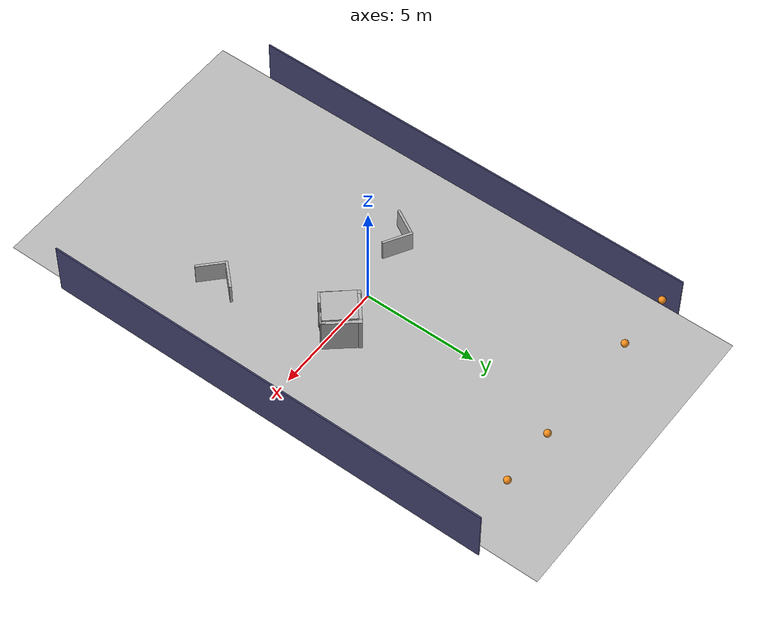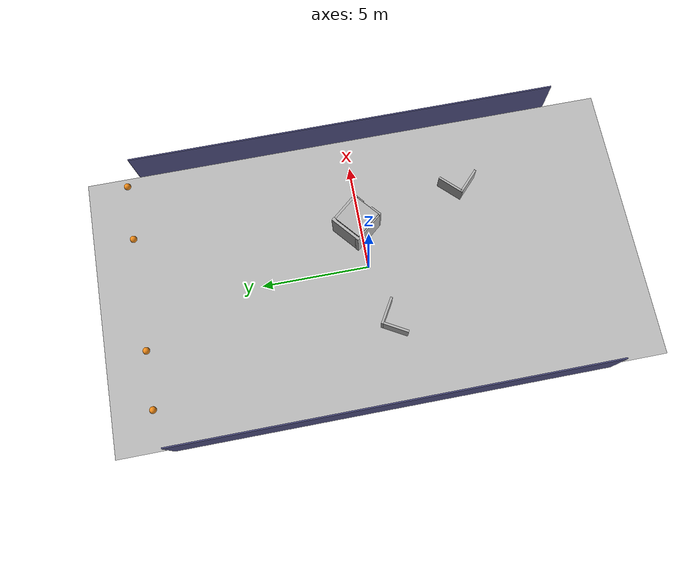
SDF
<sdf version="1.5">
 <world name="default">
  <include><uri>model://sun</uri></include>
  <include><uri>model://basketball_floor</uri></include>
  <include>
   <uri>model://danger_sphere_obstacle</uri>
   <name>obstacle_1</name>
   <pose>5.0 10.0 2.5 0 0 0</pose>
  </include>
  <include>
   <uri>model://danger_sphere_obstacle</uri>
   <name>obstacle_2</name>
   <pose>2.5 10.0 2.5 0 0 0</pose>
  </include>
  <include>
   <uri>model://danger_sphere_obstacle</uri>
   <name>obstacle_3</name>
   <pose>-2.5 10.0 2.5 0 0 0</pose>
  </include>
  <include>
   <uri>model://danger_sphere_obstacle</uri>
   <name>obstacle_4</name>
   <pose>-5.0 10.0 2.5 0 0 0</pose>
  </include>
  <include><uri>model://arena_wall</uri><name>wall_1</name><pose>6.55 0.0 0.7 0 0 1.57</pose></include>
  <include><uri>model://arena_wall</uri><name>wall_2</name><pose>-6.55 0.0 0.7 0 0 1.57</pose></include>
  <include><uri>model://Wall90Degree</uri><name>wall90_1</name><pose>-2.77 -0.48 0.46 0 0 -2.1</pose></include>
  <include><uri>model://Wall90Degree</uri><name>wall90_2</name><pose>2.98 -4.9 0.46 0 0 -0.77</pose></include>
  <include><uri>model://shelter</uri><name>shelter_1</name><pose>2.12 0.04 0.97 0 0 -0.87</pose></include>
  <scene><sky><clouds><speed>12</speed></clouds></sky></scene>
  <physics name="default_physics" default="0" type="ode">
   <gravity>0 0 -9.8066</gravity>
   <ode>
    <solver>
     <type>quick</type>
     <iters>10</iters>
     <sor>1.3</sor>
     <use_dynamic_moi_rescaling>0</use_dynamic_moi_rescaling>
    </solver>
    <constraints>
     <cfm>0</cfm>
     <erp>0.2</erp>
     <contact_max_correcting_vel>100</contact_max_correcting_vel>
     <contact_surface_layer>0.001</contact_surface_layer>
    </constraints>
   </ode>
   <max_step_size>0.002</max_step_size>
   <real_time_factor>1</real_time_factor>
   <real_time_update_rate>500</real_time_update_rate>
   <magnetic_field>6.0e-6 2.3e-5 -4.2e-5</magnetic_field>
  </physics>
 </world>
</sdf>

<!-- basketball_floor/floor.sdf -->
<sdf version="1.6">
    <model name='floor'>
      <pose frame=''>0 0 0 0 -0 0</pose>
      <static>true</static>
      <link name='link'>
        <collision name='collision'>
          <pose frame=''>0 0 -0.05 0 -0 0</pose>
          <geometry>
            <box>
              <size>20 40 0.1</size>
            </box>
          </geometry>
          <max_contacts>10</max_contacts>
          <surface>
            <contact>
              <ode/>
            </contact>
            <bounce/>
            <friction>
              <torsional>
                <ode/>
              </torsional>
              <ode/>
            </friction>
          </surface>
        </collision>
        <visual name='visual'>
            <geometry>
              <mesh>
                <scale>1 1 1</scale>
                <uri>model://basketball_floor/meshes/floor.dae</uri>
              </mesh>
            </geometry>
        </visual>
        <self_collide>0</self_collide>
        <kinematic>0</kinematic>
      </link>
    </model>
</sdf>

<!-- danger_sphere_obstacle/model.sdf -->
<sdf version="1.6">
  <model name="danger_sphere_obstacle">
    <link name="base">
      <collision name="collision">
        <geometry>
          <box>
            <size>0.3 0.3 0.3</size>
          </box>
        </geometry>
      </collision>
      <visual name="visual">
        <cast_shadows>true</cast_shadows>
        <material>
            <script>
                <uri>file://media/materials/scripts/gazebo.material</uri>
                <name>Gazebo/Orange</name>
            </script>
        </material>
        <geometry>
          <sphere>
            <radius>0.15</radius>
          </sphere>
        </geometry>
      </visual>
    </link>
    <plugin name="enemy_drone" filename="libenemy_drone.so">
      <x_min>-7.5</x_min>
      <x_max>7.5</x_max>
      <y_min>-11.5</y_min>
      <y_max>11.5</y_max>
    </plugin>
  </model>
</sdf>

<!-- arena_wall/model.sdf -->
<sdf version='1.6'>
  <model name='arena_wall'>
    <link name='link_0'>
      <pose frame=''>0 3e-06 0 0 -0 0</pose>
      <inertial>
        <mass>1.00347</mass>
        <inertia>
          <ixx>0.0839124</ixx>
          <ixy>0</ixy>
          <ixz>0</ixz>
          <iyy>24.373</iyy>
          <iyz>0</iyz>
          <izz>24.2897</izz>
        </inertia>
        <pose frame=''>0 0 0 0 -0 0</pose>
      </inertial>
      <visual name='visual'>
        <pose frame=''>0 0 0 0 -0 0</pose>
        <geometry>
          <box>
            <size>20 0.058872 2.5</size>
          </box>
        </geometry>
        <material>
          <lighting>1</lighting>
          <script>
              <uri>model://arena_wall/materials/scripts/repeated.material</uri>
              <name>WallRepeatedTexture</name>
          </script>
          <ambient>0.3 0.3 0.5 1</ambient>
          <diffuse>0.3 0.3 0.5 1</diffuse>
          <specular>0.01 0.01 0.01 1</specular>
          <emissive>0 0 0 1</emissive>
        </material>
        <cast_shadows>1</cast_shadows>
        <transparency>0</transparency>
      </visual>
      <collision name='collision'>
        <laser_retro>0</laser_retro>
        <max_contacts>10</max_contacts>
        <pose frame=''>0 0 0 0 -0 0</pose>
        <geometry>
          <box>
            <size>20 0.058872 2.5</size>
          </box>
        </geometry>
        <surface>
          <friction>
            <ode>
              <mu>1</mu>
              <mu2>1</mu2>
              <fdir1>0 0 0</fdir1>
              <slip1>0</slip1>
              <slip2>0</slip2>
            </ode>
            <torsional>
              <coefficient>1</coefficient>
              <patch_radius>0</patch_radius>
              <surface_radius>0</surface_radius>
              <use_patch_radius>1</use_patch_radius>
              <ode>
                <slip>0</slip>
              </ode>
            </torsional>
          </friction>
          <bounce>
            <restitution_coefficient>0</restitution_coefficient>
            <threshold>1e+06</threshold>
          </bounce>
          <contact>
            <collide_without_contact>0</collide_without_contact>
            <collide_without_contact_bitmask>1</collide_without_contact_bitmask>
            <collide_bitmask>1</collide_bitmask>
            <ode>
              <soft_cfm>0</soft_cfm>
              <soft_erp>0.2</soft_erp>
              <kp>1e+13</kp>
              <kd>1</kd>
              <max_vel>0.01</max_vel>
              <min_depth>0</min_depth>
            </ode>
            <bullet>
              <split_impulse>1</split_impulse>
              <split_impulse_penetration_threshold>-0.01</split_impulse_penetration_threshold>
              <soft_cfm>0</soft_cfm>
              <soft_erp>0.2</soft_erp>
              <kp>1e+13</kp>
              <kd>1</kd>
            </bullet>
          </contact>
        </surface>
      </collision>
    </link>
    <static>1</static>
    <allow_auto_disable>1</allow_auto_disable>
  </model>
</sdf>

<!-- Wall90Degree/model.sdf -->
<sdf version='1.6'>
  <model name='Wall90Degree'>
      <static>1</static>
    <link name='link_1'>
      <pose frame=''>-0.300585 0.29062 0 0 -0 0</pose>
      <inertial>
        <mass>0.132366</mass>
        <inertia>
          <ixx>0.0292074</ixx>
          <ixy>0</ixy>
          <ixz>0</ixz>
          <iyy>0.0111478</iyy>
          <iyz>0</iyz>
          <izz>0.0182942</izz>
        </inertia>
        <pose frame=''>0 0 0 0 -0 0</pose>
      </inertial>
      <visual name='visual'>
        <pose frame=''>0 0 0 0 -0 0</pose>
        <geometry>
          <box>
            <size>0.103113 1.2837 1</size>
          </box>
        </geometry>
        <material>
          <lighting>1</lighting>
          <script>
            <uri>model://Wall90Degree/materials/scripts/repeated.material</uri>
            <name>RepeatedTexture</name>
          </script>
          <ambient>0.3 0.3 0.3 1</ambient>
          <diffuse>0.7 0.7 0.7 1</diffuse>
          <specular>0.01 0.01 0.01 1</specular>
          <emissive>0 0 0 1</emissive>
        </material>
        <cast_shadows>1</cast_shadows>
        <transparency>0</transparency>
      </visual>
      <collision name='collision'>
        <laser_retro>0</laser_retro>
        <max_contacts>10</max_contacts>
        <pose frame=''>0 0 0 0 -0 0</pose>
        <geometry>
          <box>
            <size>0.103113 1.2837 1</size>
          </box>
        </geometry>
        <surface>
          <friction>
            <ode>
              <mu>1</mu>
              <mu2>1</mu2>
              <fdir1>0 0 0</fdir1>
              <slip1>0</slip1>
              <slip2>0</slip2>
            </ode>
            <torsional>
              <coefficient>1</coefficient>
              <patch_radius>0</patch_radius>
              <surface_radius>0</surface_radius>
              <use_patch_radius>1</use_patch_radius>
              <ode>
                <slip>0</slip>
              </ode>
            </torsional>
          </friction>
          <bounce>
            <restitution_coefficient>0</restitution_coefficient>
            <threshold>1e+06</threshold>
          </bounce>
          <contact>
            <collide_without_contact>0</collide_without_contact>
            <collide_without_contact_bitmask>1</collide_without_contact_bitmask>
            <collide_bitmask>1</collide_bitmask>
            <ode>
              <soft_cfm>0</soft_cfm>
              <soft_erp>0.2</soft_erp>
              <kp>1e+13</kp>
              <kd>1</kd>
              <max_vel>0.01</max_vel>
              <min_depth>0</min_depth>
            </ode>
            <bullet>
              <split_impulse>1</split_impulse>
              <split_impulse_penetration_threshold>-0.01</split_impulse_penetration_threshold>
              <soft_cfm>0</soft_cfm>
              <soft_erp>0.2</soft_erp>
              <kp>1e+13</kp>
              <kd>1</kd>
            </bullet>
          </contact>
        </surface>
      </collision>
    </link>
    <link name='link_1_clone'>
      <pose frame=''>0.300589 -0.290617 0 0 0 -1.5588</pose>
      <inertial>
        <mass>0.132366</mass>
        <inertia>
          <ixx>0.0292074</ixx>
          <ixy>0</ixy>
          <ixz>0</ixz>
          <iyy>0.0111478</iyy>
          <iyz>0</iyz>
          <izz>0.0182942</izz>
        </inertia>
        <pose frame=''>0 0 0 0 -0 0</pose>
      </inertial>
      <visual name='visual'>
        <pose frame=''>0 0 0 0 -0 0</pose>
        <geometry>
          <box>
            <size>0.103113 1.2837 1</size>
          </box>
        </geometry>
        <material>
          <lighting>1</lighting>
          <script>
              <uri>model://Wall90Degree/materials/scripts/repeated.material</uri>
            <name>RepeatedTexture</name>
          </script>
          <ambient>0.3 0.3 0.3 1</ambient>
          <diffuse>0.7 0.7 0.7 1</diffuse>
          <specular>0.01 0.01 0.01 1</specular>
          <emissive>0 0 0 1</emissive>
          <shader type='pixel'/>
        </material>
        <cast_shadows>1</cast_shadows>
        <transparency>0</transparency>
      </visual>
      <collision name='collision'>
        <laser_retro>0</laser_retro>
        <max_contacts>10</max_contacts>
        <pose frame=''>0 0 0 0 -0 0</pose>
        <geometry>
          <box>
            <size>0.103113 1.2837 1</size>
          </box>
        </geometry>
        <surface>
          <friction>
            <ode>
              <mu>1</mu>
              <mu2>1</mu2>
              <fdir1>0 0 0</fdir1>
              <slip1>0</slip1>
              <slip2>0</slip2>
            </ode>
            <torsional>
              <coefficient>1</coefficient>
              <patch_radius>0</patch_radius>
              <surface_radius>0</surface_radius>
              <use_patch_radius>1</use_patch_radius>
              <ode>
                <slip>0</slip>
              </ode>
            </torsional>
          </friction>
          <bounce>
            <restitution_coefficient>0</restitution_coefficient>
            <threshold>1e+06</threshold>
          </bounce>
          <contact>
            <collide_without_contact>0</collide_without_contact>
            <collide_without_contact_bitmask>1</collide_without_contact_bitmask>
            <collide_bitmask>1</collide_bitmask>
            <ode>
              <soft_cfm>0</soft_cfm>
              <soft_erp>0.2</soft_erp>
              <kp>1e+13</kp>
              <kd>1</kd>
              <max_vel>0.01</max_vel>
              <min_depth>0</min_depth>
            </ode>
            <bullet>
              <split_impulse>1</split_impulse>
              <split_impulse_penetration_threshold>-0.01</split_impulse_penetration_threshold>
              <soft_cfm>0</soft_cfm>
              <soft_erp>0.2</soft_erp>
              <kp>1e+13</kp>
              <kd>1</kd>
            </bullet>
          </contact>
        </surface>
      </collision>
    </link>
    <static>0</static>
    <allow_auto_disable>1</allow_auto_disable>
  </model>
</sdf>

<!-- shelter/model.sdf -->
<sdf version='1.6'>
  <model name='shelter'>
    <model name='Shelter'>
      <static>1</static>
      <link name='link_0'>
        <pose frame=''>-0.920119 0.015171 -0.190897 0 -0 0</pose>
        <inertial>
          <mass>0.432828</mass>
          <inertia>
            <ixx>0.182499</ixx>
            <ixy>0</ixy>
            <ixz>0</ixz>
            <iyy>0.0956056</iyy>
            <iyz>0</iyz>
            <izz>0.0890079</izz>
          </inertia>
          <pose frame=''>0 0 0 0 -0 0</pose>
        </inertial>
        <visual name='visual'>
          <pose frame=''>0 0 0 0 -0 0</pose>
          <geometry>
            <box>
              <size>0.171105 1.56146 1.61905</size>
            </box>
          </geometry>
          <material>
            <lighting>1</lighting>
            <script>
                <uri>model://shelter/materials/scripts/repeated.material</uri>
              <name>RepeatedTexture</name>
            </script>
            <ambient>0.3 0.3 0.3 1</ambient>
            <diffuse>0.7 0.7 0.7 1</diffuse>
            <specular>0.01 0.01 0.01 1</specular>
            <emissive>0 0 0 1</emissive>
          </material>
          <cast_shadows>1</cast_shadows>
          <transparency>0</transparency>
        </visual>
        <collision name='collision'>
          <laser_retro>0</laser_retro>
          <max_contacts>10</max_contacts>
          <pose frame=''>0 0 0 0 -0 0</pose>
          <geometry>
            <box>
              <size>0.171105 1.56146 1.61905</size>
            </box>
          </geometry>
          <surface>
            <friction>
              <ode>
                <mu>1</mu>
                <mu2>1</mu2>
                <fdir1>0 0 0</fdir1>
                <slip1>0</slip1>
                <slip2>0</slip2>
              </ode>
              <torsional>
                <coefficient>1</coefficient>
                <patch_radius>0</patch_radius>
                <surface_radius>0</surface_radius>
                <use_patch_radius>1</use_patch_radius>
                <ode>
                  <slip>0</slip>
                </ode>
              </torsional>
            </friction>
            <bounce>
              <restitution_coefficient>0</restitution_coefficient>
              <threshold>1e+06</threshold>
            </bounce>
            <contact>
              <collide_without_contact>0</collide_without_contact>
              <collide_without_contact_bitmask>1</collide_without_contact_bitmask>
              <collide_bitmask>1</collide_bitmask>
              <ode>
                <soft_cfm>0</soft_cfm>
                <soft_erp>0.2</soft_erp>
                <kp>1e+13</kp>
                <kd>1</kd>
                <max_vel>0.01</max_vel>
                <min_depth>0</min_depth>
              </ode>
              <bullet>
                <split_impulse>1</split_impulse>
                <split_impulse_penetration_threshold>-0.01</split_impulse_penetration_threshold>
                <soft_cfm>0</soft_cfm>
                <soft_erp>0.2</soft_erp>
                <kp>1e+13</kp>
                <kd>1</kd>
              </bullet>
            </contact>
          </surface>
        </collision>
      </link>
      <link name='link_0_clone'>
        <pose frame=''>-0.21624 0.6946 -0.190897 0 0 -1.57056</pose>
        <inertial>
          <mass>0.432828</mass>
          <inertia>
            <ixx>0.182499</ixx>
            <ixy>0</ixy>
            <ixz>0</ixz>
            <iyy>0.0956056</iyy>
            <iyz>0</iyz>
            <izz>0.0890079</izz>
          </inertia>
          <pose frame=''>0 0 0 0 -0 0</pose>
        </inertial>
        <visual name='visual'>
          <pose frame=''>0 0 0 0 -0 0</pose>
          <geometry>
            <box>
              <size>0.171105 1.56146 1.61905</size>
            </box>
          </geometry>
          <material>
            <lighting>1</lighting>
            <script>
                <uri>model://shelter/materials/scripts/repeated.material</uri>
              <name>RepeatedTexture</name>
            </script>
            <ambient>0.3 0.3 0.3 1</ambient>
            <diffuse>0.7 0.7 0.7 1</diffuse>
            <specular>0.01 0.01 0.01 1</specular>
            <emissive>0 0 0 1</emissive>
            <shader type='pixel'/>
          </material>
          <cast_shadows>1</cast_shadows>
          <transparency>0</transparency>
        </visual>
        <collision name='collision'>
          <laser_retro>0</laser_retro>
          <max_contacts>10</max_contacts>
          <pose frame=''>0 0 0 0 -0 0</pose>
          <geometry>
            <box>
              <size>0.171105 1.56146 1.61905</size>
            </box>
          </geometry>
          <surface>
            <friction>
              <ode>
                <mu>1</mu>
                <mu2>1</mu2>
                <fdir1>0 0 0</fdir1>
                <slip1>0</slip1>
                <slip2>0</slip2>
              </ode>
              <torsional>
                <coefficient>1</coefficient>
                <patch_radius>0</patch_radius>
                <surface_radius>0</surface_radius>
                <use_patch_radius>1</use_patch_radius>
                <ode>
                  <slip>0</slip>
                </ode>
              </torsional>
            </friction>
            <bounce>
              <restitution_coefficient>0</restitution_coefficient>
              <threshold>1e+06</threshold>
            </bounce>
            <contact>
              <collide_without_contact>0</collide_without_contact>
              <collide_without_contact_bitmask>1</collide_without_contact_bitmask>
              <collide_bitmask>1</collide_bitmask>
              <ode>
                <soft_cfm>0</soft_cfm>
                <soft_erp>0.2</soft_erp>
                <kp>1e+13</kp>
                <kd>1</kd>
                <max_vel>0.01</max_vel>
                <min_depth>0</min_depth>
              </ode>
              <bullet>
                <split_impulse>1</split_impulse>
                <split_impulse_penetration_threshold>-0.01</split_impulse_penetration_threshold>
                <soft_cfm>0</soft_cfm>
                <soft_erp>0.2</soft_erp>
                <kp>1e+13</kp>
                <kd>1</kd>
              </bullet>
            </contact>
          </surface>
        </collision>
      </link>
      <link name='link_0_clone_0'>
        <pose frame=''>-0.169587 -0.024586 0.608475 0 -1.53496 0</pose>
        <inertial>
          <mass>0.325147</mass>
          <inertia>
            <ixx>0.103015</ixx>
            <ixy>0</ixy>
            <ixz>0</ixz>
            <iyy>0.0544996</iyy>
            <iyz>0</iyz>
            <izz>0.0501041</izz>
          </inertia>
          <pose frame=''>0 0 0 0 -0 0</pose>
        </inertial>
        <visual name='visual'>
          <pose frame=''>0 0 0 0 -0 0</pose>
          <geometry>
            <box>
              <size>0.171105 1.34895 1.40786</size>
            </box>
          </geometry>
          <material>
            <lighting>1</lighting>
            <script>
                <uri>model://shelter/materials/scripts/repeated.material</uri>
              <name>RepeatedTexture</name>
            </script>
            <ambient>0.3 0.3 0.3 1</ambient>
            <diffuse>0.7 0.7 0.7 1</diffuse>
            <specular>0.01 0.01 0.01 1</specular>
            <emissive>0 0 0 1</emissive>
            <shader type='pixel'/>
          </material>
          <cast_shadows>1</cast_shadows>
          <transparency>0</transparency>
        </visual>
        <collision name='collision'>
          <laser_retro>0</laser_retro>
          <max_contacts>10</max_contacts>
          <pose frame=''>0 0 0 0 -0 0</pose>
          <geometry>
            <box>
              <size>0.171105 1.34895 1.40786</size>
            </box>
          </geometry>
          <surface>
            <friction>
              <ode>
                <mu>1</mu>
                <mu2>1</mu2>
                <fdir1>0 0 0</fdir1>
                <slip1>0</slip1>
                <slip2>0</slip2>
              </ode>
              <torsional>
                <coefficient>1</coefficient>
                <patch_radius>0</patch_radius>
                <surface_radius>0</surface_radius>
                <use_patch_radius>1</use_patch_radius>
                <ode>
                  <slip>0</slip>
                </ode>
              </torsional>
            </friction>
            <bounce>
              <restitution_coefficient>0</restitution_coefficient>
              <threshold>1e+06</threshold>
            </bounce>
            <contact>
              <collide_without_contact>0</collide_without_contact>
              <collide_without_contact_bitmask>1</collide_without_contact_bitmask>
              <collide_bitmask>1</collide_bitmask>
              <ode>
                <soft_cfm>0</soft_cfm>
                <soft_erp>0.2</soft_erp>
                <kp>1e+13</kp>
                <kd>1</kd>
                <max_vel>0.01</max_vel>
                <min_depth>0</min_depth>
              </ode>
              <bullet>
                <split_impulse>1</split_impulse>
                <split_impulse_penetration_threshold>-0.01</split_impulse_penetration_threshold>
                <soft_cfm>0</soft_cfm>
                <soft_erp>0.2</soft_erp>
                <kp>1e+13</kp>
                <kd>1</kd>
              </bullet>
            </contact>
          </surface>
        </collision>
      </link>
      <link name='link_0_clone_clone'>
        <pose frame=''>-0.239297 -0.680115 -0.190897 0 0 -1.57056</pose>
        <inertial>
          <mass>0.432828</mass>
          <inertia>
            <ixx>0.182499</ixx>
            <ixy>0</ixy>
            <ixz>0</ixz>
            <iyy>0.0956056</iyy>
            <iyz>0</iyz>
            <izz>0.0890079</izz>
          </inertia>
          <pose frame=''>0 0 0 0 -0 0</pose>
        </inertial>
        <visual name='visual'>
          <pose frame=''>0 0 0 0 -0 0</pose>
          <geometry>
            <box>
              <size>0.171105 1.56146 1.61905</size>
            </box>
          </geometry>
          <material>
            <lighting>1</lighting>
            <script>
                <uri>model://shelter/materials/scripts/repeated.material</uri>
              <name>RepeatedTexture</name>
            </script>
            <ambient>0.3 0.3 0.3 1</ambient>
            <diffuse>0.7 0.7 0.7 1</diffuse>
            <specular>0.01 0.01 0.01 1</specular>
            <emissive>0 0 0 1</emissive>
            <shader type='pixel'/>
          </material>
          <cast_shadows>1</cast_shadows>
          <transparency>0</transparency>
        </visual>
        <collision name='collision'>
          <laser_retro>0</laser_retro>
          <max_contacts>10</max_contacts>
          <pose frame=''>0 0 0 0 -0 0</pose>
          <geometry>
            <box>
              <size>0.171105 1.56146 1.61905</size>
            </box>
          </geometry>
          <surface>
            <friction>
              <ode>
                <mu>1</mu>
                <mu2>1</mu2>
                <fdir1>0 0 0</fdir1>
                <slip1>0</slip1>
                <slip2>0</slip2>
              </ode>
              <torsional>
                <coefficient>1</coefficient>
                <patch_radius>0</patch_radius>
                <surface_radius>0</surface_radius>
                <use_patch_radius>1</use_patch_radius>
                <ode>
                  <slip>0</slip>
                </ode>
              </torsional>
            </friction>
            <bounce>
              <restitution_coefficient>0</restitution_coefficient>
              <threshold>1e+06</threshold>
            </bounce>
            <contact>
              <collide_without_contact>0</collide_without_contact>
              <collide_without_contact_bitmask>1</collide_without_contact_bitmask>
              <collide_bitmask>1</collide_bitmask>
              <ode>
                <soft_cfm>0</soft_cfm>
                <soft_erp>0.2</soft_erp>
                <kp>1e+13</kp>
                <kd>1</kd>
                <max_vel>0.01</max_vel>
                <min_depth>0</min_depth>
              </ode>
              <bullet>
                <split_impulse>1</split_impulse>
                <split_impulse_penetration_threshold>-0.01</split_impulse_penetration_threshold>
                <soft_cfm>0</soft_cfm>
                <soft_erp>0.2</soft_erp>
                <kp>1e+13</kp>
                <kd>1</kd>
              </bullet>
            </contact>
          </surface>
        </collision>
      </link>
      <link name='link_0_clone_clone_0'>
        <pose frame=''>0.550896 -0.490372 -0.190897 0 0 -0.002516</pose>
        <inertial>
          <mass>0.148606</mass>
          <inertia>
            <ixx>0.0360216</ixx>
            <ixy>0</ixy>
            <ixz>0</ixz>
            <iyy>0.032825</iyy>
            <iyz>0</iyz>
            <izz>0.0039226</izz>
          </inertia>
          <pose frame=''>0 0 0 0 -0 0</pose>
        </inertial>
        <visual name='visual'>
          <pose frame=''>0 0 0 0 -0 0</pose>
          <geometry>
            <box>
              <size>0.171105 0.536108 1.61905</size>
            </box>
          </geometry>
          <material>
            <lighting>1</lighting>
            <script>
                <uri>model://shelter/materials/scripts/repeated.material</uri>
              <name>RepeatedTexture</name>
            </script>
            <ambient>0.3 0.3 0.3 1</ambient>
            <diffuse>0.7 0.7 0.7 1</diffuse>
            <specular>0.01 0.01 0.01 1</specular>
            <emissive>0 0 0 1</emissive>
            <shader type='pixel'/>
          </material>
          <cast_shadows>1</cast_shadows>
          <transparency>0</transparency>
        </visual>
        <collision name='collision'>
          <laser_retro>0</laser_retro>
          <max_contacts>10</max_contacts>
          <pose frame=''>0 0 0 0 -0 0</pose>
          <geometry>
            <box>
              <size>0.171105 0.536108 1.61905</size>
            </box>
          </geometry>
          <surface>
            <friction>
              <ode>
                <mu>1</mu>
                <mu2>1</mu2>
                <fdir1>0 0 0</fdir1>
                <slip1>0</slip1>
                <slip2>0</slip2>
              </ode>
              <torsional>
                <coefficient>1</coefficient>
                <patch_radius>0</patch_radius>
                <surface_radius>0</surface_radius>
                <use_patch_radius>1</use_patch_radius>
                <ode>
                  <slip>0</slip>
                </ode>
              </torsional>
            </friction>
            <bounce>
              <restitution_coefficient>0</restitution_coefficient>
              <threshold>1e+06</threshold>
            </bounce>
            <contact>
              <collide_without_contact>0</collide_without_contact>
              <collide_without_contact_bitmask>1</collide_without_contact_bitmask>
              <collide_bitmask>1</collide_bitmask>
              <ode>
                <soft_cfm>0</soft_cfm>
                <soft_erp>0.2</soft_erp>
                <kp>1e+13</kp>
                <kd>1</kd>
                <max_vel>0.01</max_vel>
                <min_depth>0</min_depth>
              </ode>
              <bullet>
                <split_impulse>1</split_impulse>
                <split_impulse_penetration_threshold>-0.01</split_impulse_penetration_threshold>
                <soft_cfm>0</soft_cfm>
                <soft_erp>0.2</soft_erp>
                <kp>1e+13</kp>
                <kd>1</kd>
              </bullet>
            </contact>
          </surface>
        </collision>
      </link>
      <link name='link_0_clone_clone_0_clone'>
        <pose frame=''>0.521489 0.493157 -0.190897 0 0 -0.002516</pose>
        <inertial>
          <mass>0.148606</mass>
          <inertia>
            <ixx>0.0360216</ixx>
            <ixy>0</ixy>
            <ixz>0</ixz>
            <iyy>0.032825</iyy>
            <iyz>0</iyz>
            <izz>0.0039226</izz>
          </inertia>
          <pose frame=''>0 0 0 0 -0 0</pose>
        </inertial>
        <visual name='visual'>
          <pose frame=''>0 0 0 0 -0 0</pose>
          <geometry>
            <box>
              <size>0.171105 0.536108 1.61905</size>
            </box>
          </geometry>
          <material>
            <lighting>1</lighting>
            <script>
                <uri>model://shelter/materials/scripts/repeated.material</uri>
              <name>RepeatedTexture</name>
            </script>
            <ambient>0.3 0.3 0.3 1</ambient>
            <diffuse>0.7 0.7 0.7 1</diffuse>
            <specular>0.01 0.01 0.01 1</specular>
            <emissive>0 0 0 1</emissive>
            <shader type='pixel'/>
          </material>
          <cast_shadows>1</cast_shadows>
          <transparency>0</transparency>
        </visual>
        <collision name='collision'>
          <laser_retro>0</laser_retro>
          <max_contacts>10</max_contacts>
          <pose frame=''>0 0 0 0 -0 0</pose>
          <geometry>
            <box>
              <size>0.171105 0.536108 1.61905</size>
            </box>
          </geometry>
          <surface>
            <friction>
              <ode>
                <mu>1</mu>
                <mu2>1</mu2>
                <fdir1>0 0 0</fdir1>
                <slip1>0</slip1>
                <slip2>0</slip2>
              </ode>
              <torsional>
                <coefficient>1</coefficient>
                <patch_radius>0</patch_radius>
                <surface_radius>0</surface_radius>
                <use_patch_radius>1</use_patch_radius>
                <ode>
                  <slip>0</slip>
                </ode>
              </torsional>
            </friction>
            <bounce>
              <restitution_coefficient>0</restitution_coefficient>
              <threshold>1e+06</threshold>
            </bounce>
            <contact>
              <collide_without_contact>0</collide_without_contact>
              <collide_without_contact_bitmask>1</collide_without_contact_bitmask>
              <collide_bitmask>1</collide_bitmask>
              <ode>
                <soft_cfm>0</soft_cfm>
                <soft_erp>0.2</soft_erp>
                <kp>1e+13</kp>
                <kd>1</kd>
                <max_vel>0.01</max_vel>
                <min_depth>0</min_depth>
              </ode>
              <bullet>
                <split_impulse>1</split_impulse>
                <split_impulse_penetration_threshold>-0.01</split_impulse_penetration_threshold>
                <soft_cfm>0</soft_cfm>
                <soft_erp>0.2</soft_erp>
                <kp>1e+13</kp>
                <kd>1</kd>
              </bullet>
            </contact>
          </surface>
        </collision>
      </link>
      <link name='link_0_clone_clone_0_clone_clone'>
        <pose frame=''>0.472859 -0.007857 0.346011 -1.55971 -0 -0.002516</pose>
        <inertial>
          <mass>0.138545</mass>
          <inertia>
            <ixx>0.0296237</ixx>
            <ixy>0</ixy>
            <ixz>0</ixz>
            <iyy>0.0266435</iyy>
            <iyz>0</iyz>
            <izz>0.00365703</izz>
          </inertia>
          <pose frame=''>0 0 0 0 -0 0</pose>
        </inertial>
        <visual name='visual'>
          <pose frame=''>0 0 0 0 -0 0</pose>
          <geometry>
            <box>
              <size>0.171105 0.536108 1.50944</size>
            </box>
          </geometry>
          <material>
            <lighting>1</lighting>
            <script>
                <uri>model://shelter/materials/scripts/repeated.material</uri>
              <name>RepeatedTexture</name>
            </script>
            <ambient>0.3 0.3 0.3 1</ambient>
            <diffuse>0.7 0.7 0.7 1</diffuse>
            <specular>0.01 0.01 0.01 1</specular>
            <emissive>0 0 0 1</emissive>
            <shader type='pixel'/>
          </material>
          <cast_shadows>1</cast_shadows>
          <transparency>0</transparency>
        </visual>
        <collision name='collision'>
          <laser_retro>0</laser_retro>
          <max_contacts>10</max_contacts>
          <pose frame=''>0 0 0 0 -0 0</pose>
          <geometry>
            <box>
              <size>0.171105 0.536108 1.50944</size>
            </box>
          </geometry>
          <surface>
            <friction>
              <ode>
                <mu>1</mu>
                <mu2>1</mu2>
                <fdir1>0 0 0</fdir1>
                <slip1>0</slip1>
                <slip2>0</slip2>
              </ode>
              <torsional>
                <coefficient>1</coefficient>
                <patch_radius>0</patch_radius>
                <surface_radius>0</surface_radius>
                <use_patch_radius>1</use_patch_radius>
                <ode>
                  <slip>0</slip>
                </ode>
              </torsional>
            </friction>
            <bounce>
              <restitution_coefficient>0</restitution_coefficient>
              <threshold>1e+06</threshold>
            </bounce>
            <contact>
              <collide_without_contact>0</collide_without_contact>
              <collide_without_contact_bitmask>1</collide_without_contact_bitmask>
              <collide_bitmask>1</collide_bitmask>
              <ode>
                <soft_cfm>0</soft_cfm>
                <soft_erp>0.2</soft_erp>
                <kp>1e+13</kp>
                <kd>1</kd>
                <max_vel>0.01</max_vel>
                <min_depth>0</min_depth>
              </ode>
              <bullet>
                <split_impulse>1</split_impulse>
                <split_impulse_penetration_threshold>-0.01</split_impulse_penetration_threshold>
                <soft_cfm>0</soft_cfm>
                <soft_erp>0.2</soft_erp>
                <kp>1e+13</kp>
                <kd>1</kd>
              </bullet>
            </contact>
          </surface>
        </collision>
      </link>
      <static>0</static>
      <allow_auto_disable>1</allow_auto_disable>
      <pose frame=''>-0 1e-06 3e-06 0 -0 0</pose>
    </model>
    <static>1</static>
    <allow_auto_disable>1</allow_auto_disable>
  </model>
</sdf>
